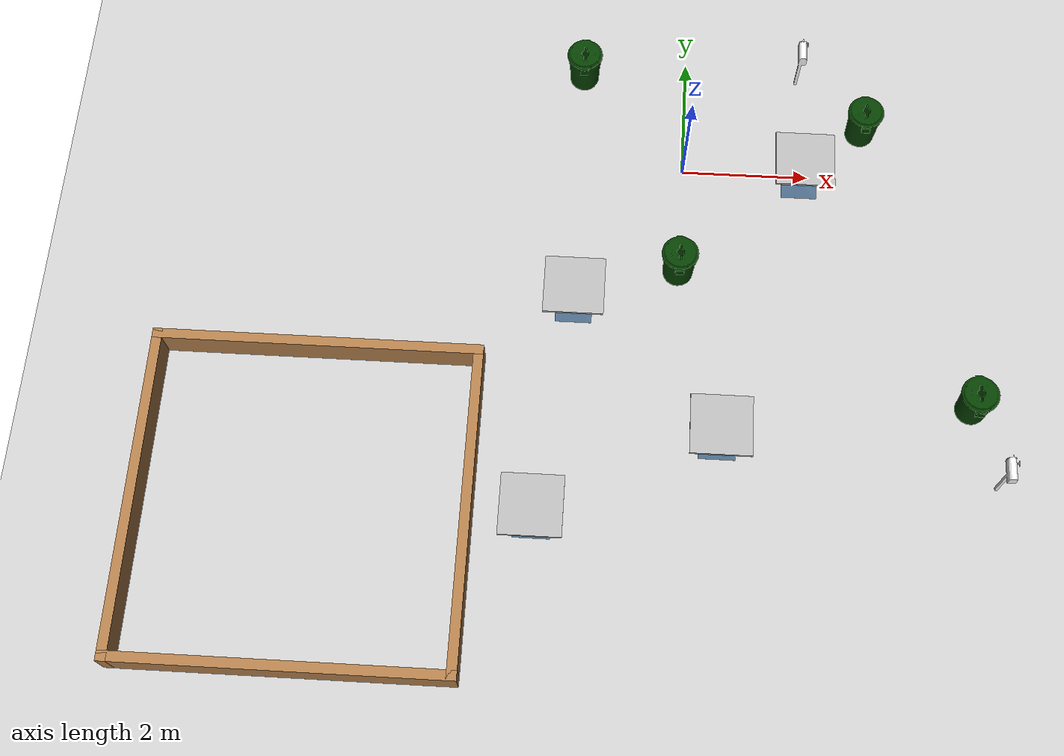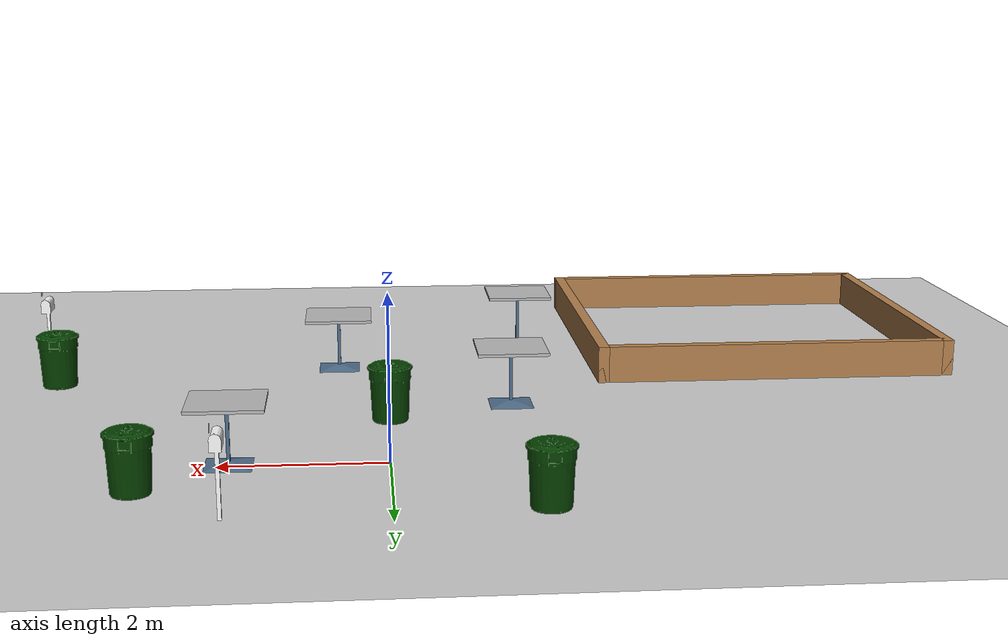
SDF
<sdf version="1.7">
 <world name="default">
  <light name="sun" type="directional">
   <pose>0 0 10 0 -0 0</pose>
   <diffuse>0.8 0.8 0.8 1</diffuse>
   <specular>0.2 0.2 0.2 1</specular>
   <attenuation>
    <range>1000</range>
    <constant>0.9</constant>
    <linear>0.01</linear>
    <quadratic>0.001</quadratic>
   </attenuation>
   <direction>-0.5 0.1 -0.9</direction>
   <spot><inner_angle>0</inner_angle><outer_angle>0</outer_angle><falloff>0</falloff></spot>
  </light>
  <model name="ground_plane">
   <static>1</static>
   <link name="link">
    <collision name="collision">
     <geometry><plane><normal>0 0 1</normal><size>100 100</size></plane></geometry>
     <surface><friction><ode><mu>100</mu><mu2>50</mu2></ode></friction></surface>
    </collision>
    <visual name="visual">
     <cast_shadows>0</cast_shadows>
     <geometry><plane><normal>0 0 1</normal><size>100 100</size></plane></geometry>
     <material>
      <script><uri>file://media/materials/scripts/gazebo.material</uri><name>Gazebo/Grey</name></script>
     </material>
    </visual>
   </link>
  </model>
  <gravity>0 0 -9.8</gravity>
  <magnetic_field>6e-06 2.3e-05 -4.2e-05</magnetic_field>
  <atmosphere type="adiabatic"/>
  <physics type="ode">
   <max_step_size>0.001</max_step_size>
   <real_time_factor>1</real_time_factor>
   <real_time_update_rate>1000</real_time_update_rate>
  </physics>
  <scene><ambient>0.4 0.4 0.4 1</ambient><background>0.7 0.7 0.7 1</background><shadows>1</shadows></scene>
  <audio><device>default</device></audio>
  <spherical_coordinates>
   <surface_model>EARTH_WGS84</surface_model>
   <latitude_deg>0</latitude_deg>
   <longitude_deg>0</longitude_deg>
   <elevation>0</elevation>
   <heading_deg>0</heading_deg>
  </spherical_coordinates>
  <model name="turtlebot3_square">
   <pose>-5.43284 -5.89533 0 0 -0 0</pose>
   <link name="Wall_1">
    <collision name="Wall_1_Collision">
     <geometry><box><size>5 0.15 0.5</size></box></geometry>
     <pose>0 0 0.25 0 -0 0</pose>
    </collision>
    <visual name="Wall_1_Visual">
     <pose>0 0 0.25 0 -0 0</pose>
     <geometry><box><size>5 0.15 0.5</size></box></geometry>
     <material>
      <script><uri>file://media/materials/scripts/gazebo.material</uri><name>Gazebo/Wood</name></script>
      <ambient>1 1 1 1</ambient>
     </material>
    </visual>
    <pose>-2.425 0 0 0 -0 1.5708</pose>
   </link>
   <link name="Wall_2">
    <collision name="Wall_2_Collision">
     <geometry><box><size>5 0.15 0.5</size></box></geometry>
     <pose>0 0 0.25 0 -0 0</pose>
    </collision>
    <visual name="Wall_2_Visual">
     <pose>0 0 0.25 0 -0 0</pose>
     <geometry><box><size>5 0.15 0.5</size></box></geometry>
     <material>
      <script><uri>file://media/materials/scripts/gazebo.material</uri><name>Gazebo/Wood</name></script>
      <ambient>1 1 1 1</ambient>
     </material>
    </visual>
    <pose>0 2.425 0 0 -0 0</pose>
   </link>
   <link name="Wall_3">
    <collision name="Wall_3_Collision">
     <geometry><box><size>5 0.15 0.5</size></box></geometry>
     <pose>0 0 0.25 0 -0 0</pose>
    </collision>
    <visual name="Wall_3_Visual">
     <pose>0 0 0.25 0 -0 0</pose>
     <geometry><box><size>5 0.15 0.5</size></box></geometry>
     <material>
      <script><uri>file://media/materials/scripts/gazebo.material</uri><name>Gazebo/Wood</name></script>
      <ambient>1 1 1 1</ambient>
     </material>
    </visual>
    <pose>2.425 0 0 0 0 -1.5708</pose>
   </link>
   <link name="Wall_4">
    <collision name="Wall_4_Collision">
     <geometry><box><size>5 0.15 0.5</size></box></geometry>
     <pose>0 0 0.25 0 -0 0</pose>
    </collision>
    <visual name="Wall_4_Visual">
     <pose>0 0 0.25 0 -0 0</pose>
     <geometry><box><size>5 0.15 0.5</size></box></geometry>
     <material>
      <script><uri>file://media/materials/scripts/gazebo.material</uri><name>Gazebo/Wood</name></script>
      <ambient>1 1 1 1</ambient>
     </material>
    </visual>
    <pose>0 -2.425 0 0 -0 3.14159</pose>
   </link>
   <static>1</static>
  </model>
  <model name="first_2015_trash_can_1">
   <link name="link">
    <inertial>
     <pose>0 0 0.3683 0 -0 0</pose>
     <mass>4.83076</mass>
     <inertia>
      <ixx>0.281534</ixx>
      <ixy>0</ixy>
      <ixz>0</ixz>
      <iyy>0.281534</iyy>
      <iyz>0</iyz>
      <izz>0.126223</izz>
     </inertia>
    </inertial>
    <visual name="visual">
     <geometry><mesh><uri>model://first_2015_trash_can/meshes/trash_can.dae</uri></mesh></geometry>
    </visual>
    <collision name="collision">
     <geometry><mesh><uri>model://first_2015_trash_can/meshes/trash_can.dae</uri></mesh></geometry>
    </collision>
   </link>
   <pose>4.41129 -3.85711 -3e-06 0 1.1e-05 -0.001901</pose>
  </model>
  <model name="cafe_table_1">
   <static>1</static>
   <link name="link">
    <collision name="surface">
     <pose>0 0 0.755 0 -0 0</pose>
     <geometry><box><size>0.913 0.913 0.04</size></box></geometry>
    </collision>
    <collision name="column">
     <pose>0 0 0.37 0 -0 0</pose>
     <geometry><box><size>0.042 0.042 0.74</size></box></geometry>
    </collision>
    <collision name="base">
     <pose>0 0 0.02 0 -0 0</pose>
     <geometry><box><size>0.56 0.56 0.04</size></box></geometry>
    </collision>
    <visual name="visual">
     <geometry><mesh><uri>model://cafe_table/meshes/cafe_table.dae</uri></mesh></geometry>
    </visual>
   </link>
   <pose>-2.0599 -5.91421 0 0 -0 0</pose>
  </model>
  <model name="cafe_table_2">
   <static>1</static>
   <link name="link">
    <collision name="surface">
     <pose>0 0 0.755 0 -0 0</pose>
     <geometry><box><size>0.913 0.913 0.04</size></box></geometry>
    </collision>
    <collision name="column">
     <pose>0 0 0.37 0 -0 0</pose>
     <geometry><box><size>0.042 0.042 0.74</size></box></geometry>
    </collision>
    <collision name="base">
     <pose>0 0 0.02 0 -0 0</pose>
     <geometry><box><size>0.56 0.56 0.04</size></box></geometry>
    </collision>
    <visual name="visual">
     <geometry><mesh><uri>model://cafe_table/meshes/cafe_table.dae</uri></mesh></geometry>
    </visual>
   </link>
   <pose>0.618743 -4.56159 0 0 -0 0</pose>
  </model>
  <model name="cafe_table_3">
   <static>1</static>
   <link name="link">
    <collision name="surface">
     <pose>0 0 0.755 0 -0 0</pose>
     <geometry><box><size>0.913 0.913 0.04</size></box></geometry>
    </collision>
    <collision name="column">
     <pose>0 0 0.37 0 -0 0</pose>
     <geometry><box><size>0.042 0.042 0.74</size></box></geometry>
    </collision>
    <collision name="base">
     <pose>0 0 0.02 0 -0 0</pose>
     <geometry><box><size>0.56 0.56 0.04</size></box></geometry>
    </collision>
    <visual name="visual">
     <geometry><mesh><uri>model://cafe_table/meshes/cafe_table.dae</uri></mesh></geometry>
    </visual>
   </link>
   <pose>-1.63067 -2.45256 0 0 -0 0</pose>
  </model>
  <model name="Mailbox_0">
   <link name="link">
    <collision name="collision">
     <geometry><mesh><uri>model://mailbox/meshes/mailbox.dae</uri></mesh></geometry>
    </collision>
    <visual name="visual">
     <geometry><mesh><uri>model://mailbox/meshes/mailbox.dae</uri></mesh></geometry>
     <material>
      <script>
       <uri>model://mailbox/materials/scripts</uri>
       <uri>model://mailbox/materials/textures</uri>
       <name>Mailbox/Diffuse</name>
      </script>
     </material>
    </visual>
    <inertial>
     <inertia><ixx>1</ixx><ixy>0</ixy><ixz>0</ixz><iyy>1</iyy><iyz>0</iyz><izz>1</izz></inertia>
     <mass>1</mass>
    </inertial>
   </link>
   <pose>4.7409 -5.06877 -9e-06 -3e-06 -6e-06 0</pose>
  </model>
  <model name="first_2015_trash_can_3">
   <link name="link">
    <inertial>
     <pose>0 0 0.3683 0 -0 0</pose>
     <mass>4.83076</mass>
     <inertia>
      <ixx>0.281534</ixx>
      <ixy>0</ixy>
      <ixz>0</ixz>
      <iyy>0.281534</iyy>
      <iyz>0</iyz>
      <izz>0.126223</izz>
     </inertia>
    </inertial>
    <visual name="visual">
     <geometry><mesh><uri>model://first_2015_trash_can/meshes/trash_can.dae</uri></mesh></geometry>
    </visual>
    <collision name="collision">
     <geometry><mesh><uri>model://first_2015_trash_can/meshes/trash_can.dae</uri></mesh></geometry>
    </collision>
   </link>
   <pose>2.84747 0.855087 -4e-06 -1e-06 6e-06 -0.000968</pose>
  </model>
  <model name="first_2015_trash_can_4">
   <link name="link">
    <inertial>
     <pose>0 0 0.3683 0 -0 0</pose>
     <mass>4.83076</mass>
     <inertia>
      <ixx>0.281534</ixx>
      <ixy>0</ixy>
      <ixz>0</ixz>
      <iyy>0.281534</iyy>
      <iyz>0</iyz>
      <izz>0.126223</izz>
     </inertia>
    </inertial>
    <visual name="visual">
     <geometry><mesh><uri>model://first_2015_trash_can/meshes/trash_can.dae</uri></mesh></geometry>
    </visual>
    <collision name="collision">
     <geometry><mesh><uri>model://first_2015_trash_can/meshes/trash_can.dae</uri></mesh></geometry>
    </collision>
   </link>
   <pose>-1.6694 1.6827 -1.1e-05 2e-06 2.3e-05 -0.000858</pose>
  </model>
  <model name="first_2015_trash_can_5">
   <link name="link">
    <inertial>
     <pose>0 0 0.3683 0 -0 0</pose>
     <mass>4.83076</mass>
     <inertia>
      <ixx>0.281534</ixx>
      <ixy>0</ixy>
      <ixz>0</ixz>
      <iyy>0.281534</iyy>
      <iyz>0</iyz>
      <izz>0.126223</izz>
     </inertia>
    </inertial>
    <visual name="visual">
     <geometry><mesh><uri>model://first_2015_trash_can/meshes/trash_can.dae</uri></mesh></geometry>
    </visual>
    <collision name="collision">
     <geometry><mesh><uri>model://first_2015_trash_can/meshes/trash_can.dae</uri></mesh></geometry>
    </collision>
   </link>
   <pose>-0.039848 -1.80065 -4e-06 -1.3e-05 2.2e-05 -0.000875</pose>
  </model>
  <model name="cafe_table_4">
   <static>1</static>
   <link name="link">
    <collision name="surface">
     <pose>0 0 0.755 0 -0 0</pose>
     <geometry><box><size>0.913 0.913 0.04</size></box></geometry>
    </collision>
    <collision name="column">
     <pose>0 0 0.37 0 -0 0</pose>
     <geometry><box><size>0.042 0.042 0.74</size></box></geometry>
    </collision>
    <collision name="base">
     <pose>0 0 0.02 0 -0 0</pose>
     <geometry><box><size>0.56 0.56 0.04</size></box></geometry>
    </collision>
    <visual name="visual">
     <geometry><mesh><uri>model://cafe_table/meshes/cafe_table.dae</uri></mesh></geometry>
    </visual>
   </link>
   <pose>1.85895 -0.088527 0 0 -0 0</pose>
  </model>
  <model name="Mailbox_1">
   <link name="link">
    <collision name="collision">
     <geometry><mesh><uri>model://mailbox/meshes/mailbox.dae</uri></mesh></geometry>
    </collision>
    <visual name="visual">
     <geometry><mesh><uri>model://mailbox/meshes/mailbox.dae</uri></mesh></geometry>
     <material>
      <script>
       <uri>model://mailbox/materials/scripts</uri>
       <uri>model://mailbox/materials/textures</uri>
       <name>Mailbox/Diffuse</name>
      </script>
     </material>
    </visual>
    <inertial>
     <inertia><ixx>1</ixx><ixy>0</ixy><ixz>0</ixz><iyy>1</iyy><iyz>0</iyz><izz>1</izz></inertia>
     <mass>1</mass>
    </inertial>
   </link>
   <pose>1.8137 1.78517 -1e-05 -8e-06 1e-06 -0</pose>
  </model>
 </world>
</sdf>
